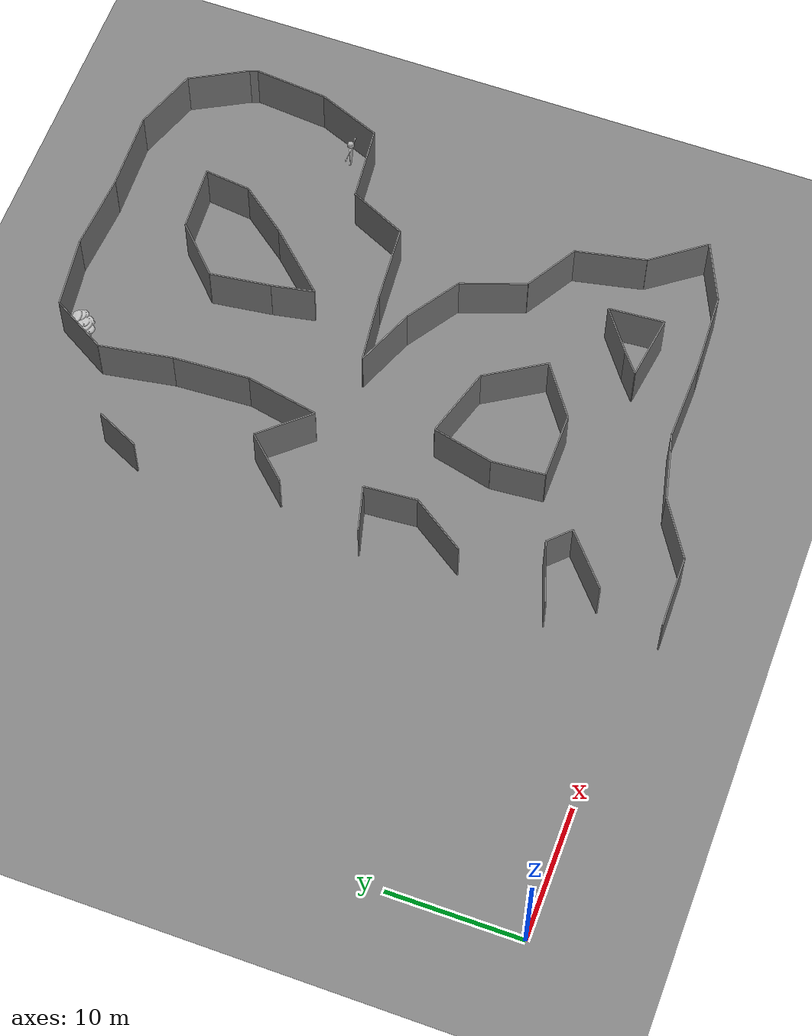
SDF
<sdf version="1.8">
 <world name="mars_cave">
  <model name="ground_plane">
   <static>1</static>
   <link name="link">
    <collision name="collision">
     <geometry><box><normal>0 0 1</normal><size>75 75 0.01</size></box></geometry>
    </collision>
    <visual name="visual">
     <geometry><plane><normal>0 0 1</normal><size>75 75</size></plane></geometry>
     <material>
      <ambient>0.5 0.5 0.5 1</ambient>
      <diffuse>0.5 0.5 0.5 1</diffuse>
      <specular>0.2 0.2 0.2 1</specular>
      <pbr><metal><albedo_map>package://cave_explorer/worlds/textures/mars_terrain1.jpg</albedo_map></metal></pbr>
     </material>
    </visual>
   </link>
   <pose>25 25 0 0 -0 0</pose>
  </model>
  <model name="wall_0">
   <pose>57.35 38.7 2.0 0 0 1.4817467441603989</pose>
   <link name="Wall_0">
    <collision name="Wall_0_Collision">
     <geometry><box><size>5.62227711874824 4 0.1</size></box></geometry>
    </collision>
    <visual name="Wall_0_Visual">
     <geometry><box><size>5.62227711874824 4 0.1</size></box></geometry>
     <material>
      <ambient>0.5 0.5 0.5 1</ambient>
      <diffuse>0.5 0.5 0.5 1</diffuse>
      <specular>0.2 0.2 0.2 1</specular>
      <pbr><metal><albedo_map>package://cave_explorer/worlds/textures/wall01.jpg</albedo_map></metal></pbr>
     </material>
    </visual>
    <pose>0 0 0 1.5707963267948966 0 0</pose>
   </link>
   <static>1</static>
  </model>
  <model name="wall_1">
   <pose>56.150000000000006 33.5 2.0 0 0 1.1938870564700756</pose>
   <link name="Wall_0">
    <collision name="Wall_0_Collision">
     <geometry><box><size>5.16236379965612 4 0.1</size></box></geometry>
    </collision>
    <visual name="Wall_0_Visual">
     <geometry><box><size>5.16236379965612 4 0.1</size></box></geometry>
     <material>
      <ambient>0.5 0.5 0.5 1</ambient>
      <diffuse>0.5 0.5 0.5 1</diffuse>
      <specular>0.2 0.2 0.2 1</specular>
      <pbr><metal><albedo_map>package://cave_explorer/worlds/textures/wall01.jpg</albedo_map></metal></pbr>
     </material>
    </visual>
    <pose>0 0 0 1.5707963267948966 0 0</pose>
   </link>
   <static>1</static>
  </model>
  <model name="wall_2">
   <pose>52.35 30.8 2.0 0 0 0.10487693873023408</pose>
   <link name="Wall_0">
    <collision name="Wall_0_Collision">
     <geometry><box><size>5.731491952362843 4 0.1</size></box></geometry>
    </collision>
    <visual name="Wall_0_Visual">
     <geometry><box><size>5.731491952362843 4 0.1</size></box></geometry>
     <material>
      <ambient>0.5 0.5 0.5 1</ambient>
      <diffuse>0.5 0.5 0.5 1</diffuse>
      <specular>0.2 0.2 0.2 1</specular>
      <pbr><metal><albedo_map>package://cave_explorer/worlds/textures/wall01.jpg</albedo_map></metal></pbr>
     </material>
    </visual>
    <pose>0 0 0 1.5707963267948966 0 0</pose>
   </link>
   <static>1</static>
  </model>
  <model name="wall_3">
   <pose>48.5 28.35 2.0 0 0 1.1354430516425942</pose>
   <link name="Wall_0">
    <collision name="Wall_0_Collision">
     <geometry><box><size>4.742362280551751 4 0.1</size></box></geometry>
    </collision>
    <visual name="Wall_0_Visual">
     <geometry><box><size>4.742362280551751 4 0.1</size></box></geometry>
     <material>
      <ambient>0.5 0.5 0.5 1</ambient>
      <diffuse>0.5 0.5 0.5 1</diffuse>
      <specular>0.2 0.2 0.2 1</specular>
      <pbr><metal><albedo_map>package://cave_explorer/worlds/textures/wall01.jpg</albedo_map></metal></pbr>
     </material>
    </visual>
    <pose>0 0 0 1.5707963267948966 0 0</pose>
   </link>
   <static>1</static>
  </model>
  <model name="wall_4">
   <pose>44.55 25.95 2.0 0 0 0.08454375551299816</pose>
   <link name="Wall_0">
    <collision name="Wall_0_Collision">
     <geometry><box><size>5.921148537234983 4 0.1</size></box></geometry>
    </collision>
    <visual name="Wall_0_Visual">
     <geometry><box><size>5.921148537234983 4 0.1</size></box></geometry>
     <material>
      <ambient>0.5 0.5 0.5 1</ambient>
      <diffuse>0.5 0.5 0.5 1</diffuse>
      <specular>0.2 0.2 0.2 1</specular>
      <pbr><metal><albedo_map>package://cave_explorer/worlds/textures/wall01.jpg</albedo_map></metal></pbr>
     </material>
    </visual>
    <pose>0 0 0 1.5707963267948966 0 0</pose>
   </link>
   <static>1</static>
  </model>
  <model name="wall_5">
   <pose>38.900000000000006 25.35 2.0 0 0 0.12891077168399134</pose>
   <link name="Wall_0">
    <collision name="Wall_0_Collision">
     <geometry><box><size>5.445181356024791 4 0.1</size></box></geometry>
    </collision>
    <visual name="Wall_0_Visual">
     <geometry><box><size>5.445181356024791 4 0.1</size></box></geometry>
     <material>
      <ambient>0.5 0.5 0.5 1</ambient>
      <diffuse>0.5 0.5 0.5 1</diffuse>
      <specular>0.2 0.2 0.2 1</specular>
      <pbr><metal><albedo_map>package://cave_explorer/worlds/textures/wall01.jpg</albedo_map></metal></pbr>
     </material>
    </visual>
    <pose>0 0 0 1.5707963267948966 0 0</pose>
   </link>
   <static>1</static>
  </model>
  <model name="wall_6">
   <pose>38.45 24.1 2.0 0 0 2.761086276477428</pose>
   <link name="Wall_0">
    <collision name="Wall_0_Collision">
     <geometry><box><size>4.846648326421054 4 0.1</size></box></geometry>
    </collision>
    <visual name="Wall_0_Visual">
     <geometry><box><size>4.846648326421054 4 0.1</size></box></geometry>
     <material>
      <ambient>0.5 0.5 0.5 1</ambient>
      <diffuse>0.5 0.5 0.5 1</diffuse>
      <specular>0.2 0.2 0.2 1</specular>
      <pbr><metal><albedo_map>package://cave_explorer/worlds/textures/wall01.jpg</albedo_map></metal></pbr>
     </material>
    </visual>
    <pose>0 0 0 1.5707963267948966 0 0</pose>
   </link>
   <static>1</static>
  </model>
  <model name="wall_7">
   <pose>42.7 21.9 2.0 0 0 2.56521743299861</pose>
   <link name="Wall_0">
    <collision name="Wall_0_Collision">
     <geometry><box><size>4.7707441767506245 4 0.1</size></box></geometry>
    </collision>
    <visual name="Wall_0_Visual">
     <geometry><box><size>4.7707441767506245 4 0.1</size></box></geometry>
     <material>
      <ambient>0.5 0.5 0.5 1</ambient>
      <diffuse>0.5 0.5 0.5 1</diffuse>
      <specular>0.2 0.2 0.2 1</specular>
      <pbr><metal><albedo_map>package://cave_explorer/worlds/textures/wall01.jpg</albedo_map></metal></pbr>
     </material>
    </visual>
    <pose>0 0 0 1.5707963267948966 0 0</pose>
   </link>
   <static>1</static>
  </model>
  <model name="wall_8">
   <pose>45.55 18.200000000000003 2.0 0 0 1.9111782654368028</pose>
   <link name="Wall_0">
    <collision name="Wall_0_Collision">
     <geometry><box><size>4 5.0921508225896055 0.1</size></box></geometry>
    </collision>
    <visual name="Wall_0_Visual">
     <geometry><box><size>4 5.0921508225896055 0.1</size></box></geometry>
     <material>
      <ambient>0.5 0.5 0.5 1</ambient>
      <diffuse>0.5 0.5 0.5 1</diffuse>
      <specular>0.2 0.2 0.2 1</specular>
      <pbr><metal><albedo_map>package://cave_explorer/worlds/textures/stop_sign.jpg</albedo_map></metal></pbr>
     </material>
    </visual>
    <pose>0 0 0 1.5707963267948966 1.5707963267948966 0</pose>
   </link>
   <static>1</static>
  </model>
  <model name="wall_9">
   <pose>48.349999999999994 14.65 2.0 0 0 2.6087487659704043</pose>
   <link name="Wall_0">
    <collision name="Wall_0_Collision">
     <geometry><box><size>4.527692569068708 4 0.1</size></box></geometry>
    </collision>
    <visual name="Wall_0_Visual">
     <geometry><box><size>4.527692569068708 4 0.1</size></box></geometry>
     <material>
      <ambient>0.5 0.5 0.5 1</ambient>
      <diffuse>0.5 0.5 0.5 1</diffuse>
      <specular>0.2 0.2 0.2 1</specular>
      <pbr><metal><albedo_map>package://cave_explorer/worlds/textures/wall02.jpg</albedo_map></metal></pbr>
     </material>
    </visual>
    <pose>0 0 0 1.5707963267948966 0 0</pose>
   </link>
   <static>1</static>
  </model>
  <model name="wall_10">
   <pose>50.849999999999994 10.85 2.0 0 0 1.7754381366246748</pose>
   <link name="Wall_0">
    <collision name="Wall_0_Collision">
     <geometry><box><size>5.412947441089744 4 0.1</size></box></geometry>
    </collision>
    <visual name="Wall_0_Visual">
     <geometry><box><size>5.412947441089744 4 0.1</size></box></geometry>
     <material>
      <ambient>0.5 0.5 0.5 1</ambient>
      <diffuse>0.5 0.5 0.5 1</diffuse>
      <specular>0.2 0.2 0.2 1</specular>
      <pbr><metal><albedo_map>package://cave_explorer/worlds/textures/wall02.jpg</albedo_map></metal></pbr>
     </material>
    </visual>
    <pose>0 0 0 1.5707963267948966 0 0</pose>
   </link>
   <static>1</static>
  </model>
  <model name="wall_11">
   <pose>52.849999999999994 6.25 2.0 0 0 2.210182232481069</pose>
   <link name="Wall_0">
    <collision name="Wall_0_Collision">
     <geometry><box><size>4.8600411520891456 4 0.1</size></box></geometry>
    </collision>
    <visual name="Wall_0_Visual">
     <geometry><box><size>4.8600411520891456 4 0.1</size></box></geometry>
     <material>
      <ambient>0.5 0.5 0.5 1</ambient>
      <diffuse>0.5 0.5 0.5 1</diffuse>
      <specular>0.2 0.2 0.2 1</specular>
      <pbr><metal><albedo_map>package://cave_explorer/worlds/textures/wall02.jpg</albedo_map></metal></pbr>
     </material>
    </visual>
    <pose>0 0 0 1.5707963267948966 0 0</pose>
   </link>
   <static>1</static>
  </model>
  <model name="wall_12">
   <pose>52.099999999999994 3.3 2.0 0 0 0.4266274931268762</pose>
   <link name="Wall_0">
    <collision name="Wall_0_Collision">
     <geometry><box><size>4.833218389437827 4 0.1</size></box></geometry>
    </collision>
    <visual name="Wall_0_Visual">
     <geometry><box><size>4.833218389437827 4 0.1</size></box></geometry>
     <material>
      <ambient>0.5 0.5 0.5 1</ambient>
      <diffuse>0.5 0.5 0.5 1</diffuse>
      <specular>0.2 0.2 0.2 1</specular>
      <pbr><metal><albedo_map>package://cave_explorer/worlds/textures/wall02.jpg</albedo_map></metal></pbr>
     </material>
    </visual>
    <pose>0 0 0 1.5707963267948966 0 0</pose>
   </link>
   <static>1</static>
  </model>
  <model name="wall_13">
   <pose>46.95 2.15 2.0 0 0 0.050803704058221634</pose>
   <link name="Wall_0">
    <collision name="Wall_0_Collision">
     <geometry><box><size>5.907622195096771 4 0.1</size></box></geometry>
    </collision>
    <visual name="Wall_0_Visual">
     <geometry><box><size>5.907622195096771 4 0.1</size></box></geometry>
     <material>
      <ambient>0.5 0.5 0.5 1</ambient>
      <diffuse>0.5 0.5 0.5 1</diffuse>
      <specular>0.2 0.2 0.2 1</specular>
      <pbr><metal><albedo_map>package://cave_explorer/worlds/textures/wall02.jpg</albedo_map></metal></pbr>
     </material>
    </visual>
    <pose>0 0 0 1.5707963267948966 0 0</pose>
   </link>
   <static>1</static>
  </model>
  <model name="wall_14">
   <pose>40.95 2.05 2.0 0 0 -0.016391974308005278</pose>
   <link name="Wall_0">
    <collision name="Wall_0_Collision">
     <geometry><box><size>6.100819617067859 4 0.1</size></box></geometry>
    </collision>
    <visual name="Wall_0_Visual">
     <geometry><box><size>6.100819617067859 4 0.1</size></box></geometry>
     <material>
      <ambient>0.5 0.5 0.5 1</ambient>
      <diffuse>0.5 0.5 0.5 1</diffuse>
      <specular>0.2 0.2 0.2 1</specular>
      <pbr><metal><albedo_map>package://cave_explorer/worlds/textures/wall02.jpg</albedo_map></metal></pbr>
     </material>
    </visual>
    <pose>0 0 0 1.5707963267948966 0 0</pose>
   </link>
   <static>1</static>
  </model>
  <model name="wall_15">
   <pose>35.349999999999994 1.5 2.0 0 0 0.23109066719589705</pose>
   <link name="Wall_0">
    <collision name="Wall_0_Collision">
     <geometry><box><size>5.239274758971896 4 0.1</size></box></geometry>
    </collision>
    <visual name="Wall_0_Visual">
     <geometry><box><size>5.239274758971896 4 0.1</size></box></geometry>
     <material>
      <ambient>0.5 0.5 0.5 1</ambient>
      <diffuse>0.5 0.5 0.5 1</diffuse>
      <specular>0.2 0.2 0.2 1</specular>
      <pbr><metal><albedo_map>package://cave_explorer/worlds/textures/wall02.jpg</albedo_map></metal></pbr>
     </material>
    </visual>
    <pose>0 0 0 1.5707963267948966 0 0</pose>
   </link>
   <static>1</static>
  </model>
  <model name="wall_16">
   <pose>30.75 -0.39999999999999997 2.0 0 0 0.5651494400067596</pose>
   <link name="Wall_0">
    <collision name="Wall_0_Collision">
     <geometry><box><size>4.85489443757534 4 0.1</size></box></geometry>
    </collision>
    <visual name="Wall_0_Visual">
     <geometry><box><size>4.85489443757534 4 0.1</size></box></geometry>
     <material>
      <ambient>0.5 0.5 0.5 1</ambient>
      <diffuse>0.5 0.5 0.5 1</diffuse>
      <specular>0.2 0.2 0.2 1</specular>
      <pbr><metal><albedo_map>package://cave_explorer/worlds/textures/wall03.jpg</albedo_map></metal></pbr>
     </material>
    </visual>
    <pose>0 0 0 1.5707963267948966 0 0</pose>
   </link>
   <static>1</static>
  </model>
  <model name="wall_17">
   <pose>26.0 -1.75 2.0 0 0 0.018516402068009065</pose>
   <link name="Wall_0">
    <collision name="Wall_0_Collision">
     <geometry><box><size>5.4009258465563095 4 0.1</size></box></geometry>
    </collision>
    <visual name="Wall_0_Visual">
     <geometry><box><size>5.4009258465563095 4 0.1</size></box></geometry>
     <material>
      <ambient>0.5 0.5 0.5 1</ambient>
      <diffuse>0.5 0.5 0.5 1</diffuse>
      <specular>0.2 0.2 0.2 1</specular>
      <pbr><metal><albedo_map>package://cave_explorer/worlds/textures/wall03.jpg</albedo_map></metal></pbr>
     </material>
    </visual>
    <pose>0 0 0 1.5707963267948966 0 0</pose>
   </link>
   <static>1</static>
  </model>
  <model name="wall_52">
   <pose>24.75 39.4 2.0 0 0 1.1324597669369392</pose>
   <link name="Wall_0">
    <collision name="Wall_0_Collision">
     <geometry><box><size>3.534119409414461 4 0.1</size></box></geometry>
    </collision>
    <visual name="Wall_0_Visual">
     <geometry><box><size>3.534119409414461 4 0.1</size></box></geometry>
     <material>
      <ambient>0.5 0.5 0.5 1</ambient>
      <diffuse>0.5 0.5 0.5 1</diffuse>
      <specular>0.2 0.2 0.2 1</specular>
      <pbr><metal><albedo_map>package://cave_explorer/worlds/textures/wall07.jpg</albedo_map></metal></pbr>
     </material>
    </visual>
    <pose>0 0 0 1.5707963267948966 0 0</pose>
   </link>
   <static>1</static>
  </model>
  <model name="wall_60">
   <pose>26.25 28.55 2.0 0 0 -2.322873494314097</pose>
   <link name="Wall_0">
    <collision name="Wall_0_Collision">
     <geometry><box><size>4.244997055358225 4 0.1</size></box></geometry>
    </collision>
    <visual name="Wall_0_Visual">
     <geometry><box><size>4.244997055358225 4 0.1</size></box></geometry>
     <material>
      <ambient>0.5 0.5 0.5 1</ambient>
      <diffuse>0.5 0.5 0.5 1</diffuse>
      <specular>0.2 0.2 0.2 1</specular>
      <pbr><metal><albedo_map>package://cave_explorer/worlds/textures/wall08.png</albedo_map></metal></pbr>
     </material>
    </visual>
    <pose>0 0 0 1.5707963267948966 0 0</pose>
   </link>
   <static>1</static>
  </model>
  <model name="wall_61">
   <pose>29.25 28.35 2.0 0 0 2.295662470410238</pose>
   <link name="Wall_0">
    <collision name="Wall_0_Collision">
     <geometry><box><size>4 4.675467891024384 0.1</size></box></geometry>
    </collision>
    <visual name="Wall_0_Visual">
     <geometry><box><size>4 4.675467891024384 0.1</size></box></geometry>
     <material>
      <ambient>0.5 0.5 0.5 1</ambient>
      <diffuse>0.5 0.5 0.5 1</diffuse>
      <specular>0.2 0.2 0.2 1</specular>
      <pbr><metal><albedo_map>package://cave_explorer/worlds/textures/stop_sign.jpg</albedo_map></metal></pbr>
     </material>
    </visual>
    <pose>0 0 0 1.5707963267948966 1.5707963267948966 0</pose>
   </link>
   <static>1</static>
  </model>
  <model name="wall_62">
   <pose>31.35 29.35 2.0 0 0 -1.768191886644777</pose>
   <link name="Wall_0">
    <collision name="Wall_0_Collision">
     <geometry><box><size>5.608921464952063 4 0.1</size></box></geometry>
    </collision>
    <visual name="Wall_0_Visual">
     <geometry><box><size>5.608921464952063 4 0.1</size></box></geometry>
     <material>
      <ambient>0.5 0.5 0.5 1</ambient>
      <diffuse>0.5 0.5 0.5 1</diffuse>
      <specular>0.2 0.2 0.2 1</specular>
      <pbr><metal><albedo_map>package://cave_explorer/worlds/textures/wall08.png</albedo_map></metal></pbr>
     </material>
    </visual>
    <pose>0 0 0 1.5707963267948966 0 0</pose>
   </link>
   <static>1</static>
  </model>
  <model name="wall_63">
   <pose>31.75 35.0 2.0 0 0 -1.5191182423124672</pose>
   <link name="Wall_0">
    <collision name="Wall_0_Collision">
     <geometry><box><size>5.807753438292639 4 0.1</size></box></geometry>
    </collision>
    <visual name="Wall_0_Visual">
     <geometry><box><size>5.807753438292639 4 0.1</size></box></geometry>
     <material>
      <ambient>0.5 0.5 0.5 1</ambient>
      <diffuse>0.5 0.5 0.5 1</diffuse>
      <specular>0.2 0.2 0.2 1</specular>
      <pbr><metal><albedo_map>package://cave_explorer/worlds/textures/wall08.png</albedo_map></metal></pbr>
     </material>
    </visual>
    <pose>0 0 0 1.5707963267948966 0 0</pose>
   </link>
   <static>1</static>
  </model>
  <model name="wall_64">
   <pose>31.15 40.65 2.0 0 0 -1.408597493331514</pose>
   <link name="Wall_0">
    <collision name="Wall_0_Collision">
     <geometry><box><size>5.573149917237109 4 0.1</size></box></geometry>
    </collision>
    <visual name="Wall_0_Visual">
     <geometry><box><size>5.573149917237109 4 0.1</size></box></geometry>
     <material>
      <ambient>0.5 0.5 0.5 1</ambient>
      <diffuse>0.5 0.5 0.5 1</diffuse>
      <specular>0.2 0.2 0.2 1</specular>
      <pbr><metal><albedo_map>package://cave_explorer/worlds/textures/wall09.png</albedo_map></metal></pbr>
     </material>
    </visual>
    <pose>0 0 0 1.5707963267948966 0 0</pose>
   </link>
   <static>1</static>
  </model>
  <model name="wall_65">
   <pose>31.9 45.45 2.0 0 0 -2.100385925576973</pose>
   <link name="Wall_0">
    <collision name="Wall_0_Collision">
     <geometry><box><size>4.750789408087884 4 0.1</size></box></geometry>
    </collision>
    <visual name="Wall_0_Visual">
     <geometry><box><size>4.750789408087884 4 0.1</size></box></geometry>
     <material>
      <ambient>0.5 0.5 0.5 1</ambient>
      <diffuse>0.5 0.5 0.5 1</diffuse>
      <specular>0.2 0.2 0.2 1</specular>
      <pbr><metal><albedo_map>package://cave_explorer/worlds/textures/wall09.png</albedo_map></metal></pbr>
     </material>
    </visual>
    <pose>0 0 0 1.5707963267948966 0 0</pose>
   </link>
   <static>1</static>
  </model>
  <model name="wall_66">
   <pose>35.8 47.85 2.0 0 0 -3.0126818819058014</pose>
   <link name="Wall_0">
    <collision name="Wall_0_Collision">
     <geometry><box><size>5.445181356024792 4 0.1</size></box></geometry>
    </collision>
    <visual name="Wall_0_Visual">
     <geometry><box><size>5.445181356024792 4 0.1</size></box></geometry>
     <material>
      <ambient>0.5 0.5 0.5 1</ambient>
      <diffuse>0.5 0.5 0.5 1</diffuse>
      <specular>0.2 0.2 0.2 1</specular>
      <pbr><metal><albedo_map>package://cave_explorer/worlds/textures/wall09.png</albedo_map></metal></pbr>
     </material>
    </visual>
    <pose>0 0 0 1.5707963267948966 0 0</pose>
   </link>
   <static>1</static>
  </model>
  <model name="wall_67">
   <pose>41.4 48.0 2.0 0 0 3.072736164288748</pose>
   <link name="Wall_0">
    <collision name="Wall_0_Collision">
     <geometry><box><size>5.81377674149945 4 0.1</size></box></geometry>
    </collision>
    <visual name="Wall_0_Visual">
     <geometry><box><size>5.81377674149945 4 0.1</size></box></geometry>
     <material>
      <ambient>0.5 0.5 0.5 1</ambient>
      <diffuse>0.5 0.5 0.5 1</diffuse>
      <specular>0.2 0.2 0.2 1</specular>
      <pbr><metal><albedo_map>package://cave_explorer/worlds/textures/wall09.png</albedo_map></metal></pbr>
     </material>
    </visual>
    <pose>0 0 0 1.5707963267948966 0 0</pose>
   </link>
   <static>1</static>
  </model>
  <model name="wall_68">
   <pose>47.3 47.9 2.0 0 0 -3.1082716577115455</pose>
   <link name="Wall_0">
    <collision name="Wall_0_Collision">
     <geometry><box><size>6.003332407921453 4 0.1</size></box></geometry>
    </collision>
    <visual name="Wall_0_Visual">
     <geometry><box><size>6.003332407921453 4 0.1</size></box></geometry>
     <material>
      <ambient>0.5 0.5 0.5 1</ambient>
      <diffuse>0.5 0.5 0.5 1</diffuse>
      <specular>0.2 0.2 0.2 1</specular>
      <pbr><metal><albedo_map>package://cave_explorer/worlds/textures/wall09.png</albedo_map></metal></pbr>
     </material>
    </visual>
    <pose>0 0 0 1.5707963267948966 0 0</pose>
   </link>
   <static>1</static>
  </model>
  <model name="wall_69">
   <pose>52.7 47.15 2.0 0 0 2.801210714947886</pose>
   <link name="Wall_0">
    <collision name="Wall_0_Collision">
     <geometry><box><size>4 5.092150822589611 0.1</size></box></geometry>
    </collision>
    <visual name="Wall_0_Visual">
     <geometry><box><size>4 5.092150822589611 0.1</size></box></geometry>
     <material>
      <ambient>0.5 0.5 0.5 1</ambient>
      <diffuse>0.5 0.5 0.5 1</diffuse>
      <specular>0.2 0.2 0.2 1</specular>
      <pbr><metal><albedo_map>package://cave_explorer/worlds/textures/stop_sign.jpg</albedo_map></metal></pbr>
     </material>
    </visual>
    <pose>0 0 0 1.5707963267948966 1.5707963267948966 0</pose>
   </link>
   <static>1</static>
  </model>
  <model name="wall_70">
   <pose>56.25 44.2 2.0 0 0 2.071809713598486</pose>
   <link name="Wall_0">
    <collision name="Wall_0_Collision">
     <geometry><box><size>4.7885279575251465 4 0.1</size></box></geometry>
    </collision>
    <visual name="Wall_0_Visual">
     <geometry><box><size>4.7885279575251465 4 0.1</size></box></geometry>
     <material>
      <ambient>0.5 0.5 0.5 1</ambient>
      <diffuse>0.5 0.5 0.5 1</diffuse>
      <specular>0.2 0.2 0.2 1</specular>
      <pbr><metal><albedo_map>package://cave_explorer/worlds/textures/wall09.png</albedo_map></metal></pbr>
     </material>
    </visual>
    <pose>0 0 0 1.5707963267948966 0 0</pose>
   </link>
   <static>1</static>
  </model>
  <model name="wall_71">
   <pose>57.5 41.8 2.0 0 0 1.8925468811915425</pose>
   <link name="Wall_0">
    <collision name="Wall_0_Collision">
     <geometry><box><size>0.6324555320336781 4 0.1</size></box></geometry>
    </collision>
    <visual name="Wall_0_Visual">
     <geometry><box><size>0.6324555320336781 4 0.1</size></box></geometry>
     <material>
      <ambient>0.5 0.5 0.5 1</ambient>
      <diffuse>0.5 0.5 0.5 1</diffuse>
      <specular>0.2 0.2 0.2 1</specular>
      <pbr><metal><albedo_map>package://cave_explorer/worlds/textures/wall09.png</albedo_map></metal></pbr>
     </material>
    </visual>
    <pose>0 0 0 1.5707963267948966 0 0</pose>
   </link>
   <static>1</static>
  </model>
  <model name="wall_72">
   <pose>47.400000000000006 39.95 2.0 0 0 1.457004319651189</pose>
   <link name="Wall_0">
    <collision name="Wall_0_Collision">
     <geometry><box><size>3.522782990761707 4 0.1</size></box></geometry>
    </collision>
    <visual name="Wall_0_Visual">
     <geometry><box><size>3.522782990761707 4 0.1</size></box></geometry>
     <material>
      <ambient>0.5 0.5 0.5 1</ambient>
      <diffuse>0.5 0.5 0.5 1</diffuse>
      <specular>0.2 0.2 0.2 1</specular>
      <pbr><metal><albedo_map>package://cave_explorer/worlds/textures/wall10.png</albedo_map></metal></pbr>
     </material>
    </visual>
    <pose>0 0 0 1.5707963267948966 0 0</pose>
   </link>
   <static>1</static>
  </model>
  <model name="wall_73">
   <pose>45.85 36.45 2.0 0 0 0.9137213910832426</pose>
   <link name="Wall_0">
    <collision name="Wall_0_Collision">
     <geometry><box><size>4.420407221060071 4 0.1</size></box></geometry>
    </collision>
    <visual name="Wall_0_Visual">
     <geometry><box><size>4.420407221060071 4 0.1</size></box></geometry>
     <material>
      <ambient>0.5 0.5 0.5 1</ambient>
      <diffuse>0.5 0.5 0.5 1</diffuse>
      <specular>0.2 0.2 0.2 1</specular>
      <pbr><metal><albedo_map>package://cave_explorer/worlds/textures/wall10.png</albedo_map></metal></pbr>
     </material>
    </visual>
    <pose>0 0 0 1.5707963267948966 0 0</pose>
   </link>
   <static>1</static>
  </model>
  <model name="wall_74">
   <pose>42.45 32.5 2.0 0 0 0.8206776369910397</pose>
   <link name="Wall_0">
    <collision name="Wall_0_Collision">
     <geometry><box><size>6.01414998150196 4 0.1</size></box></geometry>
    </collision>
    <visual name="Wall_0_Visual">
     <geometry><box><size>6.01414998150196 4 0.1</size></box></geometry>
     <material>
      <ambient>0.5 0.5 0.5 1</ambient>
      <diffuse>0.5 0.5 0.5 1</diffuse>
      <specular>0.2 0.2 0.2 1</specular>
      <pbr><metal><albedo_map>package://cave_explorer/worlds/textures/wall10.png</albedo_map></metal></pbr>
     </material>
    </visual>
    <pose>0 0 0 1.5707963267948966 0 0</pose>
   </link>
   <static>1</static>
  </model>
  <model name="wall_75">
   <pose>40.099999999999994 31.9 2.0 0 0 -1.3854483767992014</pose>
   <link name="Wall_0">
    <collision name="Wall_0_Collision">
     <geometry><box><size>3.2557641192199407 4 0.1</size></box></geometry>
    </collision>
    <visual name="Wall_0_Visual">
     <geometry><box><size>3.2557641192199407 4 0.1</size></box></geometry>
     <material>
      <ambient>0.5 0.5 0.5 1</ambient>
      <diffuse>0.5 0.5 0.5 1</diffuse>
      <specular>0.2 0.2 0.2 1</specular>
      <pbr><metal><albedo_map>package://cave_explorer/worlds/textures/wall10.png</albedo_map></metal></pbr>
     </material>
    </visual>
    <pose>0 0 0 1.5707963267948966 0 0</pose>
   </link>
   <static>1</static>
  </model>
  <model name="wall_76">
   <pose>39.5 35.8 2.0 0 0 -1.4410937896389857</pose>
   <link name="Wall_0">
    <collision name="Wall_0_Collision">
     <geometry><box><size>4.6389654018972815 4 0.1</size></box></geometry>
    </collision>
    <visual name="Wall_0_Visual">
     <geometry><box><size>4.6389654018972815 4 0.1</size></box></geometry>
     <material>
      <ambient>0.5 0.5 0.5 1</ambient>
      <diffuse>0.5 0.5 0.5 1</diffuse>
      <specular>0.2 0.2 0.2 1</specular>
      <pbr><metal><albedo_map>package://cave_explorer/worlds/textures/wall10.png</albedo_map></metal></pbr>
     </material>
    </visual>
    <pose>0 0 0 1.5707963267948966 0 0</pose>
   </link>
   <static>1</static>
  </model>
  <model name="wall_77">
   <pose>40.900000000000006 39.75 2.0 0 0 -2.37111875518243</pose>
   <link name="Wall_0">
    <collision name="Wall_0_Collision">
     <geometry><box><size>4.73814309619285 4 0.1</size></box></geometry>
    </collision>
    <visual name="Wall_0_Visual">
     <geometry><box><size>4.73814309619285 4 0.1</size></box></geometry>
     <material>
      <ambient>0.5 0.5 0.5 1</ambient>
      <diffuse>0.5 0.5 0.5 1</diffuse>
      <specular>0.2 0.2 0.2 1</specular>
      <pbr><metal><albedo_map>package://cave_explorer/worlds/textures/wall10.png</albedo_map></metal></pbr>
     </material>
    </visual>
    <pose>0 0 0 1.5707963267948966 0 0</pose>
   </link>
   <static>1</static>
  </model>
  <model name="wall_78">
   <pose>45.1 41.55 2.0 0 0 -3.0816644984685846</pose>
   <link name="Wall_0">
    <collision name="Wall_0_Collision">
     <geometry><box><size>5.008991914547278 4 0.1</size></box></geometry>
    </collision>
    <visual name="Wall_0_Visual">
     <geometry><box><size>5.008991914547278 4 0.1</size></box></geometry>
     <material>
      <ambient>0.5 0.5 0.5 1</ambient>
      <diffuse>0.5 0.5 0.5 1</diffuse>
      <specular>0.2 0.2 0.2 1</specular>
      <pbr><metal><albedo_map>package://cave_explorer/worlds/textures/wall10.png</albedo_map></metal></pbr>
     </material>
    </visual>
    <pose>0 0 0 1.5707963267948966 0 0</pose>
   </link>
   <static>1</static>
  </model>
  <model name="wall_80">
   <pose>35.15 17.3 2.0 0 0 2.8484057570319106</pose>
   <link name="Wall_0">
    <collision name="Wall_0_Collision">
     <geometry><box><size>5.536244214266562 4 0.1</size></box></geometry>
    </collision>
    <visual name="Wall_0_Visual">
     <geometry><box><size>5.536244214266562 4 0.1</size></box></geometry>
     <material>
      <ambient>0.5 0.5 0.5 1</ambient>
      <diffuse>0.5 0.5 0.5 1</diffuse>
      <specular>0.2 0.2 0.2 1</specular>
      <pbr><metal><albedo_map>package://cave_explorer/worlds/textures/wall11.png</albedo_map></metal></pbr>
     </material>
    </visual>
    <pose>0 0 0 1.5707963267948966 0 0</pose>
   </link>
   <static>1</static>
  </model>
  <model name="wall_81">
   <pose>39.15 14.35 2.0 0 0 2.1314833217777025</pose>
   <link name="Wall_0">
    <collision name="Wall_0_Collision">
     <geometry><box><size>5.077400909914444 4 0.1</size></box></geometry>
    </collision>
    <visual name="Wall_0_Visual">
     <geometry><box><size>5.077400909914444 4 0.1</size></box></geometry>
     <material>
      <ambient>0.5 0.5 0.5 1</ambient>
      <diffuse>0.5 0.5 0.5 1</diffuse>
      <specular>0.2 0.2 0.2 1</specular>
      <pbr><metal><albedo_map>package://cave_explorer/worlds/textures/wall11.png</albedo_map></metal></pbr>
     </material>
    </visual>
    <pose>0 0 0 1.5707963267948966 0 0</pose>
   </link>
   <static>1</static>
  </model>
  <model name="wall_82">
   <pose>38.6 10.85 2.0 0 0 0.6177557255662328</pose>
   <link name="Wall_0">
    <collision name="Wall_0_Collision">
     <geometry><box><size>4.661544808322663 4 0.1</size></box></geometry>
    </collision>
    <visual name="Wall_0_Visual">
     <geometry><box><size>4.661544808322663 4 0.1</size></box></geometry>
     <material>
      <ambient>0.5 0.5 0.5 1</ambient>
      <diffuse>0.5 0.5 0.5 1</diffuse>
      <specular>0.2 0.2 0.2 1</specular>
      <pbr><metal><albedo_map>package://cave_explorer/worlds/textures/wall11.png</albedo_map></metal></pbr>
     </material>
    </visual>
    <pose>0 0 0 1.5707963267948966 0 0</pose>
   </link>
   <static>1</static>
  </model>
  <model name="wall_83">
   <pose>34.2 9.5 2.0 0 0 0.0</pose>
   <link name="Wall_0">
    <collision name="Wall_0_Collision">
     <geometry><box><size>5.0000000000000036 4 0.1</size></box></geometry>
    </collision>
    <visual name="Wall_0_Visual">
     <geometry><box><size>5.0000000000000036 4 0.1</size></box></geometry>
     <material>
      <ambient>0.5 0.5 0.5 1</ambient>
      <diffuse>0.5 0.5 0.5 1</diffuse>
      <specular>0.2 0.2 0.2 1</specular>
      <pbr><metal><albedo_map>package://cave_explorer/worlds/textures/wall11.png</albedo_map></metal></pbr>
     </material>
    </visual>
    <pose>0 0 0 1.5707963267948966 0 0</pose>
   </link>
   <static>1</static>
  </model>
  <model name="wall_84">
   <pose>31.549999999999997 11.5 2.0 0 0 -1.4959364790841296</pose>
   <link name="Wall_0">
    <collision name="Wall_0_Collision">
     <geometry><box><size>4.011234224026316 4 0.1</size></box></geometry>
    </collision>
    <visual name="Wall_0_Visual">
     <geometry><box><size>4.011234224026316 4 0.1</size></box></geometry>
     <material>
      <ambient>0.5 0.5 0.5 1</ambient>
      <diffuse>0.5 0.5 0.5 1</diffuse>
      <specular>0.2 0.2 0.2 1</specular>
      <pbr><metal><albedo_map>package://cave_explorer/worlds/textures/wall11.png</albedo_map></metal></pbr>
     </material>
    </visual>
    <pose>0 0 0 1.5707963267948966 0 0</pose>
   </link>
   <static>1</static>
  </model>
  <model name="wall_85">
   <pose>31.95 15.8 2.0 0 0 -1.8055189392800939</pose>
   <link name="Wall_0">
    <collision name="Wall_0_Collision">
     <geometry><box><size>4.729693436154189 4 0.1</size></box></geometry>
    </collision>
    <visual name="Wall_0_Visual">
     <geometry><box><size>4.729693436154189 4 0.1</size></box></geometry>
     <material>
      <ambient>0.5 0.5 0.5 1</ambient>
      <diffuse>0.5 0.5 0.5 1</diffuse>
      <specular>0.2 0.2 0.2 1</specular>
      <pbr><metal><albedo_map>package://cave_explorer/worlds/textures/wall11.png</albedo_map></metal></pbr>
     </material>
    </visual>
    <pose>0 0 0 1.5707963267948966 0 0</pose>
   </link>
   <static>1</static>
  </model>
  <model name="wall_86">
   <pose>26.549999999999997 19.3 2.0 0 0 1.6456561745056637</pose>
   <link name="Wall_0">
    <collision name="Wall_0_Collision">
     <geometry><box><size>4.011234224026316 4 0.1</size></box></geometry>
    </collision>
    <visual name="Wall_0_Visual">
     <geometry><box><size>4.011234224026316 4 0.1</size></box></geometry>
     <material>
      <ambient>0.5 0.5 0.5 1</ambient>
      <diffuse>0.5 0.5 0.5 1</diffuse>
      <specular>0.2 0.2 0.2 1</specular>
      <pbr><metal><albedo_map>package://cave_explorer/worlds/textures/wall11.png</albedo_map></metal></pbr>
     </material>
    </visual>
    <pose>0 0 0 1.5707963267948966 0 0</pose>
   </link>
   <static>1</static>
  </model>
  <model name="wall_87">
   <pose>25.35 15.3 2.0 0 0 0.9770466600841256</pose>
   <link name="Wall_0">
    <collision name="Wall_0_Collision">
     <geometry><box><size>4.825971404805461 4 0.1</size></box></geometry>
    </collision>
    <visual name="Wall_0_Visual">
     <geometry><box><size>4.825971404805461 4 0.1</size></box></geometry>
     <material>
      <ambient>0.5 0.5 0.5 1</ambient>
      <diffuse>0.5 0.5 0.5 1</diffuse>
      <specular>0.2 0.2 0.2 1</specular>
      <pbr><metal><albedo_map>package://cave_explorer/worlds/textures/wall11.png</albedo_map></metal></pbr>
     </material>
    </visual>
    <pose>0 0 0 1.5707963267948966 0 0</pose>
   </link>
   <static>1</static>
  </model>
  <model name="wall_95">
   <pose>24.7 20.85 2.0 0 0 -2.882821761626095</pose>
   <link name="Wall_0">
    <collision name="Wall_0_Collision">
     <geometry><box><size>3.517101079013794 4 0.1</size></box></geometry>
    </collision>
    <visual name="Wall_0_Visual">
     <geometry><box><size>3.517101079013794 4 0.1</size></box></geometry>
     <material>
      <ambient>0.5 0.5 0.5 1</ambient>
      <diffuse>0.5 0.5 0.5 1</diffuse>
      <specular>0.2 0.2 0.2 1</specular>
      <pbr><metal><albedo_map>package://cave_explorer/worlds/textures/wall12.png</albedo_map></metal></pbr>
     </material>
    </visual>
    <pose>0 0 0 1.5707963267948966 0 0</pose>
   </link>
   <static>1</static>
  </model>
  <model name="wall_96">
   <pose>24.45 7.05 2.0 0 0 0.3217505543966422</pose>
   <link name="Wall_0">
    <collision name="Wall_0_Collision">
     <geometry><box><size>4.743416490252569 4 0.1</size></box></geometry>
    </collision>
    <visual name="Wall_0_Visual">
     <geometry><box><size>4.743416490252569 4 0.1</size></box></geometry>
     <material>
      <ambient>0.5 0.5 0.5 1</ambient>
      <diffuse>0.5 0.5 0.5 1</diffuse>
      <specular>0.2 0.2 0.2 1</specular>
      <pbr><metal><albedo_map>package://cave_explorer/worlds/textures/wall13.png</albedo_map></metal></pbr>
     </material>
    </visual>
    <pose>0 0 0 1.5707963267948966 0 0</pose>
   </link>
   <static>1</static>
  </model>
  <model name="wall_98">
   <pose>26.35 4.7 2.0 0 0 -2.4285318207309396</pose>
   <link name="Wall_0">
    <collision name="Wall_0_Collision">
     <geometry><box><size>4.891829923454003 4 0.1</size></box></geometry>
    </collision>
    <visual name="Wall_0_Visual">
     <geometry><box><size>4.891829923454003 4 0.1</size></box></geometry>
     <material>
      <ambient>0.5 0.5 0.5 1</ambient>
      <diffuse>0.5 0.5 0.5 1</diffuse>
      <specular>0.2 0.2 0.2 1</specular>
      <pbr><metal><albedo_map>package://cave_explorer/worlds/textures/wall13.png</albedo_map></metal></pbr>
     </material>
    </visual>
    <pose>0 0 0 1.5707963267948966 0 0</pose>
   </link>
   <static>1</static>
  </model>
  <model name="wall_99">
   <pose>27.45 7.05 2.0 0 0 -0.7853981633974483</pose>
   <link name="Wall_0">
    <collision name="Wall_0_Collision">
     <geometry><box><size>2.1213203435596424 4 0.1</size></box></geometry>
    </collision>
    <visual name="Wall_0_Visual">
     <geometry><box><size>2.1213203435596424 4 0.1</size></box></geometry>
     <material>
      <ambient>0.5 0.5 0.5 1</ambient>
      <diffuse>0.5 0.5 0.5 1</diffuse>
      <specular>0.2 0.2 0.2 1</specular>
      <pbr><metal><albedo_map>package://cave_explorer/worlds/textures/wall13.png</albedo_map></metal></pbr>
     </material>
    </visual>
    <pose>0 0 0 1.5707963267948966 0 0</pose>
   </link>
   <static>1</static>
  </model>
  <model name="wall_100">
   <pose>44.25 5.75 2.0 0 0 2.9996955989856295</pose>
   <link name="Wall_0">
    <collision name="Wall_0_Collision">
     <geometry><box><size>4.949747468305838 4 0.1</size></box></geometry>
    </collision>
    <visual name="Wall_0_Visual">
     <geometry><box><size>4.949747468305838 4 0.1</size></box></geometry>
     <material>
      <ambient>0.5 0.5 0.5 1</ambient>
      <diffuse>0.5 0.5 0.5 1</diffuse>
      <specular>0.2 0.2 0.2 1</specular>
      <pbr><metal><albedo_map>package://cave_explorer/worlds/textures/wall13.png</albedo_map></metal></pbr>
     </material>
    </visual>
    <pose>0 0 0 1.5707963267948966 0 0</pose>
   </link>
   <static>1</static>
  </model>
  <model name="wall_101">
   <pose>46.55 7.5 2.0 0 0 -1.4994888620096052</pose>
   <link name="Wall_0">
    <collision name="Wall_0_Collision">
     <geometry><box><size>4.21070065428546 4 0.1</size></box></geometry>
    </collision>
    <visual name="Wall_0_Visual">
     <geometry><box><size>4.21070065428546 4 0.1</size></box></geometry>
     <material>
      <ambient>0.5 0.5 0.5 1</ambient>
      <diffuse>0.5 0.5 0.5 1</diffuse>
      <specular>0.2 0.2 0.2 1</specular>
      <pbr><metal><albedo_map>package://cave_explorer/worlds/textures/wall13.png</albedo_map></metal></pbr>
     </material>
    </visual>
    <pose>0 0 0 1.5707963267948966 0 0</pose>
   </link>
   <static>1</static>
  </model>
  <model name="wall_102">
   <pose>44.849999999999994 8.45 2.0 0 0 0.6383198080090455</pose>
   <link name="Wall_0">
    <collision name="Wall_0_Collision">
     <geometry><box><size>3.8600518131237576 4 0.1</size></box></geometry>
    </collision>
    <visual name="Wall_0_Visual">
     <geometry><box><size>3.8600518131237576 4 0.1</size></box></geometry>
     <material>
      <ambient>0.5 0.5 0.5 1</ambient>
      <diffuse>0.5 0.5 0.5 1</diffuse>
      <specular>0.2 0.2 0.2 1</specular>
      <pbr><metal><albedo_map>package://cave_explorer/worlds/textures/wall13.png</albedo_map></metal></pbr>
     </material>
    </visual>
    <pose>0 0 0 1.5707963267948966 0 0</pose>
   </link>
   <static>1</static>
  </model>
  <model name="wall_103">
   <pose>42.55 6.699999999999999 2.0 0 0 0.6747409422235527</pose>
   <link name="Wall_0">
    <collision name="Wall_0_Collision">
     <geometry><box><size>1.9209372712298547 4 0.1</size></box></geometry>
    </collision>
    <visual name="Wall_0_Visual">
     <geometry><box><size>1.9209372712298547 4 0.1</size></box></geometry>
     <material>
      <ambient>0.5 0.5 0.5 1</ambient>
      <diffuse>0.5 0.5 0.5 1</diffuse>
      <specular>0.2 0.2 0.2 1</specular>
      <pbr><metal><albedo_map>package://cave_explorer/worlds/textures/wall13.png</albedo_map></metal></pbr>
     </material>
    </visual>
    <pose>0 0 0 1.5707963267948966 0 0</pose>
   </link>
   <static>1</static>
  </model>
  <model name="artifact_10">
   <pose>54.4 32.7 0.2 1.5707963267948966 0 3.141592653589793</pose>
   <link name="artifact_0">
    <visual name="artifact_0_Visual">
     <geometry>
      <mesh>
       <scale>1.5 1.5 1.5</scale>
       <uri>package://cave_explorer/worlds/models/artifacts/green_alien/green_alien.obj</uri>
      </mesh>
     </geometry>
    </visual>
    <collision name="artifact_0_collision">
     <geometry>
      <mesh>
       <scale>1.5 1.5 1.5</scale>
       <uri>package://cave_explorer/worlds/models/artifacts/green_alien/green_alien.obj</uri>
      </mesh>
     </geometry>
    </collision>
   </link>
   <static>1</static>
  </model>
  <model name="artifact_14">
   <pose>33.5 45.9 0.8 1.5707963267948966 0 0</pose>
   <link name="artifact_0">
    <visual name="artifact_0_Visual">
     <geometry>
      <mesh>
       <scale>7.0 7.0 7.0</scale>
       <uri>package://cave_explorer/worlds/models/artifacts/mushrooms_blue/mushrooms_blue.obj</uri>
      </mesh>
     </geometry>
    </visual>
    <collision name="artifact_0_collision">
     <geometry>
      <mesh>
       <scale>7.0 7.0 7.0</scale>
       <uri>package://cave_explorer/worlds/models/artifacts/mushrooms_blue/mushrooms_blue.obj</uri>
      </mesh>
     </geometry>
    </collision>
   </link>
   <static>1</static>
  </model>
 </world>
</sdf>
